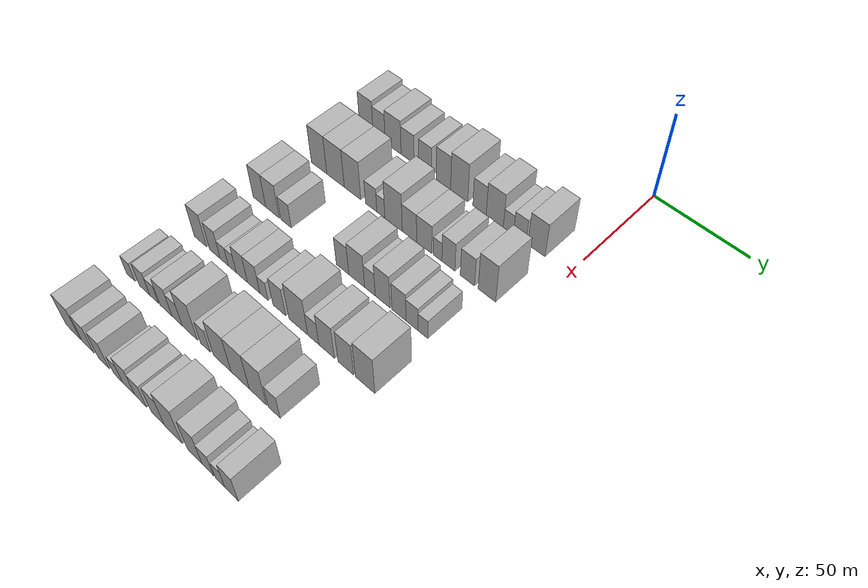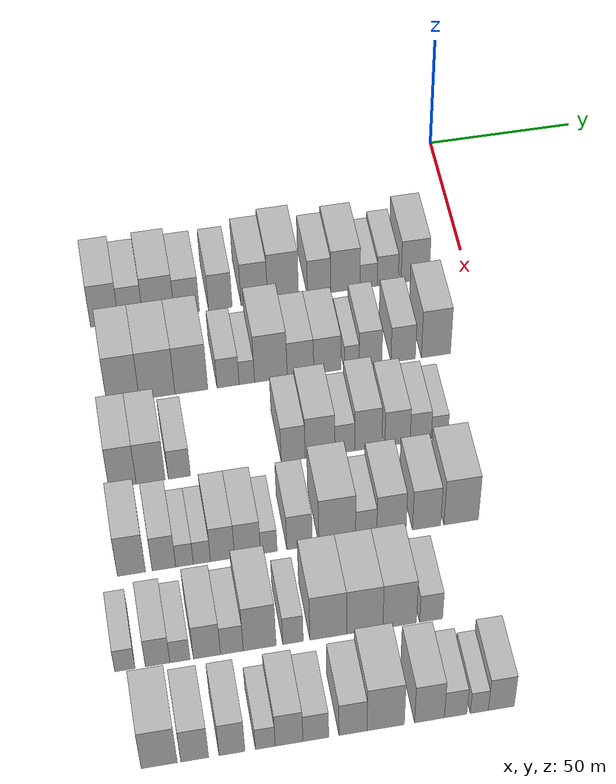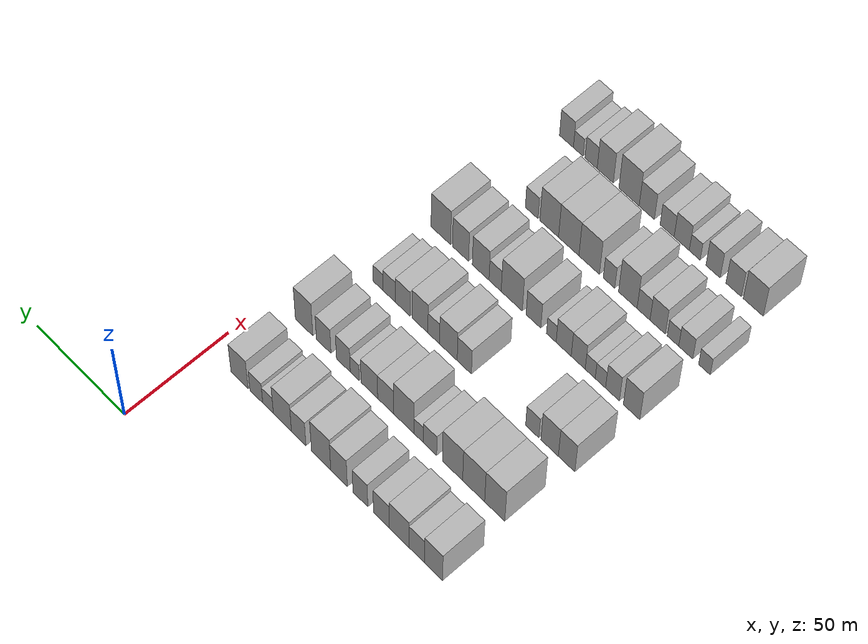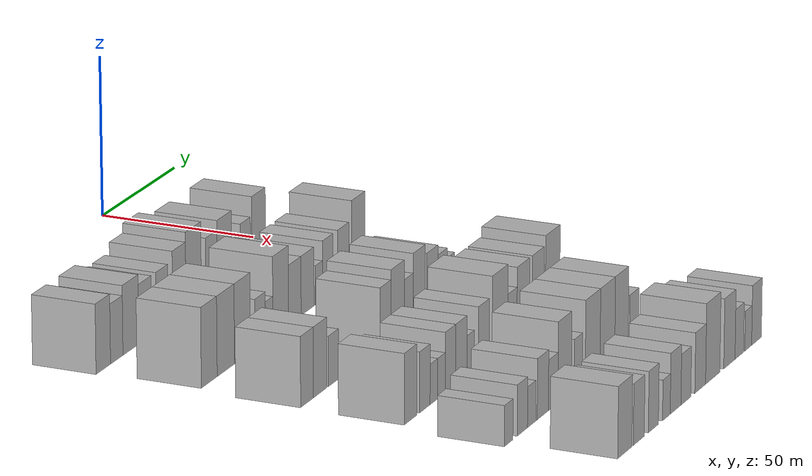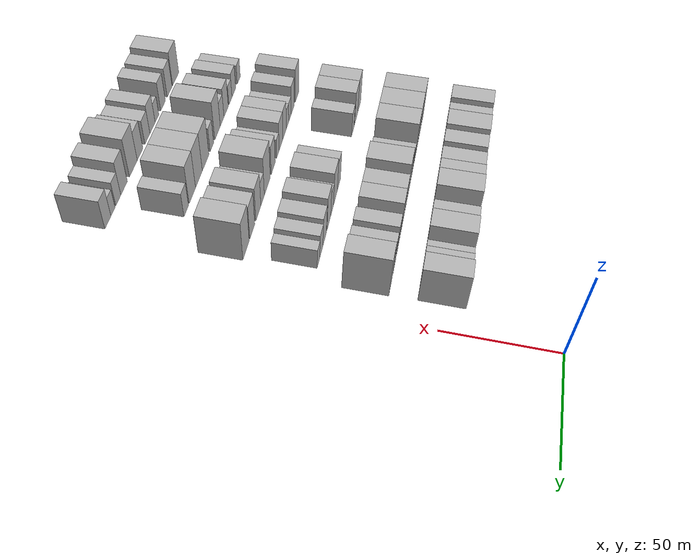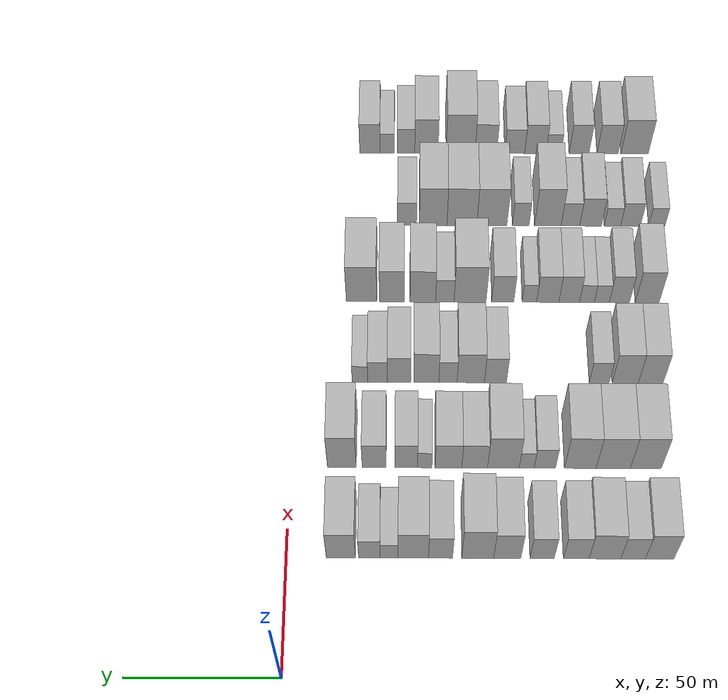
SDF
<sdf version="1.6">
 <world name="default">
  <model name="building_48">
   <static>1</static>
   <pose>50.0000 -121.8584 0 0.000000 0.000000 0.000000</pose>
   <link name="link">
    <pose>0 0 10.50 0 0 0</pose>
    <collision name="collision"><geometry><box><size>20.0000 9.3083 21.0000</size></box></geometry></collision>
    <visual name="visual">
     <cast_shadows>0</cast_shadows>
     <geometry><box><size>20.0000 9.3083 21.0000</size></box></geometry>
     <material>
      <script>
       <uri>model://HANNAS_wall/materials/scripts</uri>
       <uri>model://HANNAS_wall/materials/textures</uri>
       <name>vrc/HANNAS_wall</name>
      </script>
     </material>
    </visual>
   </link>
  </model>
  <model name="building_49">
   <static>1</static>
   <pose>50.0000 -113.1992 0 0.000000 0.000000 0.000000</pose>
   <link name="link">
    <pose>0 0 9.00 0 0 0</pose>
    <collision name="collision"><geometry><box><size>20.0000 8.0102 18.0000</size></box></geometry></collision>
    <visual name="visual">
     <cast_shadows>0</cast_shadows>
     <geometry><box><size>20.0000 8.0102 18.0000</size></box></geometry>
     <material>
      <script>
       <uri>model://HANNAS_wall/materials/scripts</uri>
       <uri>model://HANNAS_wall/materials/textures</uri>
       <name>vrc/HANNAS_wall</name>
      </script>
     </material>
    </visual>
   </link>
  </model>
  <model name="building_50">
   <static>1</static>
   <pose>50.0000 -104.0061 0 0.000000 0.000000 0.000000</pose>
   <link name="link">
    <pose>0 0 10.50 0 0 0</pose>
    <collision name="collision"><geometry><box><size>20.0000 10.3760 21.0000</size></box></geometry></collision>
    <visual name="visual">
     <cast_shadows>0</cast_shadows>
     <geometry><box><size>20.0000 10.3760 21.0000</size></box></geometry>
     <material>
      <script>
       <uri>model://HANNAS_wall/materials/scripts</uri>
       <uri>model://HANNAS_wall/materials/textures</uri>
       <name>vrc/HANNAS_wall</name>
      </script>
     </material>
    </visual>
   </link>
  </model>
  <model name="building_51">
   <static>1</static>
   <pose>50.0000 -94.6270 0 0.000000 0.000000 0.000000</pose>
   <link name="link">
    <pose>0 0 9.00 0 0 0</pose>
    <collision name="collision"><geometry><box><size>20.0000 8.3822 18.0000</size></box></geometry></collision>
    <visual name="visual">
     <cast_shadows>0</cast_shadows>
     <geometry><box><size>20.0000 8.3822 18.0000</size></box></geometry>
     <material>
      <script>
       <uri>model://HANNAS_wall/materials/scripts</uri>
       <uri>model://HANNAS_wall/materials/textures</uri>
       <name>vrc/HANNAS_wall</name>
      </script>
     </material>
    </visual>
   </link>
  </model>
  <model name="building_52">
   <static>1</static>
   <pose>50.0000 -83.4829 0 0.000000 0.000000 0.000000</pose>
   <link name="link">
    <pose>0 0 9.00 0 0 0</pose>
    <collision name="collision"><geometry><box><size>20.0000 7.9060 18.0000</size></box></geometry></collision>
    <visual name="visual">
     <cast_shadows>0</cast_shadows>
     <geometry><box><size>20.0000 7.9060 18.0000</size></box></geometry>
     <material>
      <script>
       <uri>model://HANNAS_wall/materials/scripts</uri>
       <uri>model://HANNAS_wall/materials/textures</uri>
       <name>vrc/HANNAS_wall</name>
      </script>
     </material>
    </visual>
   </link>
  </model>
  <model name="building_53">
   <static>1</static>
   <pose>50.0000 -72.0863 0 0.000000 0.000000 0.000000</pose>
   <link name="link">
    <pose>0 0 10.50 0 0 0</pose>
    <collision name="collision"><geometry><box><size>20.0000 8.8870 21.0000</size></box></geometry></collision>
    <visual name="visual">
     <cast_shadows>0</cast_shadows>
     <geometry><box><size>20.0000 8.8870 21.0000</size></box></geometry>
     <material>
      <script>
       <uri>model://HANNAS_wall/materials/scripts</uri>
       <uri>model://HANNAS_wall/materials/textures</uri>
       <name>vrc/HANNAS_wall</name>
      </script>
     </material>
    </visual>
   </link>
  </model>
  <model name="building_54">
   <static>1</static>
   <pose>50.0000 -62.4509 0 0.000000 0.000000 0.000000</pose>
   <link name="link">
    <pose>0 0 12.00 0 0 0</pose>
    <collision name="collision"><geometry><box><size>20.0000 10.3838 24.0000</size></box></geometry></collision>
    <visual name="visual">
     <cast_shadows>0</cast_shadows>
     <geometry><box><size>20.0000 10.3838 24.0000</size></box></geometry>
     <material>
      <script>
       <uri>model://HANNAS_wall/materials/scripts</uri>
       <uri>model://HANNAS_wall/materials/textures</uri>
       <name>vrc/HANNAS_wall</name>
      </script>
     </material>
    </visual>
   </link>
  </model>
  <model name="building_55">
   <static>1</static>
   <pose>50.0000 -50.3179 0 0.000000 0.000000 0.000000</pose>
   <link name="link">
    <pose>0 0 9.00 0 0 0</pose>
    <collision name="collision"><geometry><box><size>20.0000 7.8824 18.0000</size></box></geometry></collision>
    <visual name="visual">
     <cast_shadows>0</cast_shadows>
     <geometry><box><size>20.0000 7.8824 18.0000</size></box></geometry>
     <material>
      <script>
       <uri>model://HANNAS_wall/materials/scripts</uri>
       <uri>model://HANNAS_wall/materials/textures</uri>
       <name>vrc/HANNAS_wall</name>
      </script>
     </material>
    </visual>
   </link>
  </model>
  <model name="building_56">
   <static>1</static>
   <pose>50.0000 -41.4188 0 0.000000 0.000000 0.000000</pose>
   <link name="link">
    <pose>0 0 10.50 0 0 0</pose>
    <collision name="collision"><geometry><box><size>20.0000 9.9157 21.0000</size></box></geometry></collision>
    <visual name="visual">
     <cast_shadows>0</cast_shadows>
     <geometry><box><size>20.0000 9.9157 21.0000</size></box></geometry>
     <material>
      <script>
       <uri>model://HANNAS_wall/materials/scripts</uri>
       <uri>model://HANNAS_wall/materials/textures</uri>
       <name>vrc/HANNAS_wall</name>
      </script>
     </material>
    </visual>
   </link>
  </model>
  <model name="building_57">
   <static>1</static>
   <pose>50.0000 -33.5466 0 0.000000 0.000000 0.000000</pose>
   <link name="link">
    <pose>0 0 6.00 0 0 0</pose>
    <collision name="collision"><geometry><box><size>20.0000 5.8287 12.0000</size></box></geometry></collision>
    <visual name="visual">
     <cast_shadows>0</cast_shadows>
     <geometry><box><size>20.0000 5.8287 12.0000</size></box></geometry>
     <material>
      <script>
       <uri>model://HANNAS_wall/materials/scripts</uri>
       <uri>model://HANNAS_wall/materials/textures</uri>
       <name>vrc/HANNAS_wall</name>
      </script>
     </material>
    </visual>
   </link>
  </model>
  <model name="building_58">
   <static>1</static>
   <pose>50.0000 -27.0967 0 0.000000 0.000000 0.000000</pose>
   <link name="link">
    <pose>0 0 7.50 0 0 0</pose>
    <collision name="collision"><geometry><box><size>20.0000 7.0712 15.0000</size></box></geometry></collision>
    <visual name="visual">
     <cast_shadows>0</cast_shadows>
     <geometry><box><size>20.0000 7.0712 15.0000</size></box></geometry>
     <material>
      <script>
       <uri>model://HANNAS_wall/materials/scripts</uri>
       <uri>model://HANNAS_wall/materials/textures</uri>
       <name>vrc/HANNAS_wall</name>
      </script>
     </material>
    </visual>
   </link>
  </model>
  <model name="building_59">
   <static>1</static>
   <pose>50.0000 -17.7884 0 0.000000 0.000000 0.000000</pose>
   <link name="link">
    <pose>0 0 10.50 0 0 0</pose>
    <collision name="collision"><geometry><box><size>20.0000 9.5454 21.0000</size></box></geometry></collision>
    <visual name="visual">
     <cast_shadows>0</cast_shadows>
     <geometry><box><size>20.0000 9.5454 21.0000</size></box></geometry>
     <material>
      <script>
       <uri>model://HANNAS_wall/materials/scripts</uri>
       <uri>model://HANNAS_wall/materials/textures</uri>
       <name>vrc/HANNAS_wall</name>
      </script>
     </material>
    </visual>
   </link>
  </model>
  <model name="building_167">
   <static>1</static>
   <pose>82.0000 -119.5898 0 0.000000 0.000000 0.000000</pose>
   <link name="link">
    <pose>0 0 12.00 0 0 0</pose>
    <collision name="collision"><geometry><box><size>20.0000 10.4270 24.0000</size></box></geometry></collision>
    <visual name="visual">
     <cast_shadows>0</cast_shadows>
     <geometry><box><size>20.0000 10.4270 24.0000</size></box></geometry>
     <material>
      <script>
       <uri>model://HANNAS_wall/materials/scripts</uri>
       <uri>model://HANNAS_wall/materials/textures</uri>
       <name>vrc/HANNAS_wall</name>
      </script>
     </material>
    </visual>
   </link>
  </model>
  <model name="building_168">
   <static>1</static>
   <pose>82.0000 -108.6301 0 0.000000 0.000000 0.000000</pose>
   <link name="link">
    <pose>0 0 12.00 0 0 0</pose>
    <collision name="collision"><geometry><box><size>20.0000 11.4925 24.0000</size></box></geometry></collision>
    <visual name="visual">
     <cast_shadows>0</cast_shadows>
     <geometry><box><size>20.0000 11.4925 24.0000</size></box></geometry>
     <material>
      <script>
       <uri>model://HANNAS_wall/materials/scripts</uri>
       <uri>model://HANNAS_wall/materials/textures</uri>
       <name>vrc/HANNAS_wall</name>
      </script>
     </material>
    </visual>
   </link>
  </model>
  <model name="building_169">
   <static>1</static>
   <pose>82.0000 -97.5637 0 0.000000 0.000000 0.000000</pose>
   <link name="link">
    <pose>0 0 12.00 0 0 0</pose>
    <collision name="collision"><geometry><box><size>20.0000 10.6405 24.0000</size></box></geometry></collision>
    <visual name="visual">
     <cast_shadows>0</cast_shadows>
     <geometry><box><size>20.0000 10.6405 24.0000</size></box></geometry>
     <material>
      <script>
       <uri>model://HANNAS_wall/materials/scripts</uri>
       <uri>model://HANNAS_wall/materials/textures</uri>
       <name>vrc/HANNAS_wall</name>
      </script>
     </material>
    </visual>
   </link>
  </model>
  <model name="building_170">
   <static>1</static>
   <pose>82.0000 -85.6618 0 0.000000 0.000000 0.000000</pose>
   <link name="link">
    <pose>0 0 7.50 0 0 0</pose>
    <collision name="collision"><geometry><box><size>20.0000 7.1633 15.0000</size></box></geometry></collision>
    <visual name="visual">
     <cast_shadows>0</cast_shadows>
     <geometry><box><size>20.0000 7.1633 15.0000</size></box></geometry>
     <material>
      <script>
       <uri>model://HANNAS_wall/materials/scripts</uri>
       <uri>model://HANNAS_wall/materials/textures</uri>
       <name>vrc/HANNAS_wall</name>
      </script>
     </material>
    </visual>
   </link>
  </model>
  <model name="building_171">
   <static>1</static>
   <pose>82.0000 -79.5696 0 0.000000 0.000000 0.000000</pose>
   <link name="link">
    <pose>0 0 6.00 0 0 0</pose>
    <collision name="collision"><geometry><box><size>20.0000 5.0210 12.0000</size></box></geometry></collision>
    <visual name="visual">
     <cast_shadows>0</cast_shadows>
     <geometry><box><size>20.0000 5.0210 12.0000</size></box></geometry>
     <material>
      <script>
       <uri>model://HANNAS_wall/materials/scripts</uri>
       <uri>model://HANNAS_wall/materials/textures</uri>
       <name>vrc/HANNAS_wall</name>
      </script>
     </material>
    </visual>
   </link>
  </model>
  <model name="building_172">
   <static>1</static>
   <pose>82.0000 -71.7171 0 0.000000 0.000000 0.000000</pose>
   <link name="link">
    <pose>0 0 12.00 0 0 0</pose>
    <collision name="collision"><geometry><box><size>20.0000 10.6840 24.0000</size></box></geometry></collision>
    <visual name="visual">
     <cast_shadows>0</cast_shadows>
     <geometry><box><size>20.0000 10.6840 24.0000</size></box></geometry>
     <material>
      <script>
       <uri>model://HANNAS_wall/materials/scripts</uri>
       <uri>model://HANNAS_wall/materials/textures</uri>
       <name>vrc/HANNAS_wall</name>
      </script>
     </material>
    </visual>
   </link>
  </model>
  <model name="building_173">
   <static>1</static>
   <pose>82.0000 -62.0393 0 0.000000 0.000000 0.000000</pose>
   <link name="link">
    <pose>0 0 9.00 0 0 0</pose>
    <collision name="collision"><geometry><box><size>20.0000 8.6715 18.0000</size></box></geometry></collision>
    <visual name="visual">
     <cast_shadows>0</cast_shadows>
     <geometry><box><size>20.0000 8.6715 18.0000</size></box></geometry>
     <material>
      <script>
       <uri>model://HANNAS_wall/materials/scripts</uri>
       <uri>model://HANNAS_wall/materials/textures</uri>
       <name>vrc/HANNAS_wall</name>
      </script>
     </material>
    </visual>
   </link>
  </model>
  <model name="building_174">
   <static>1</static>
   <pose>82.0000 -53.2101 0 0.000000 0.000000 0.000000</pose>
   <link name="link">
    <pose>0 0 9.00 0 0 0</pose>
    <collision name="collision"><geometry><box><size>20.0000 8.9869 18.0000</size></box></geometry></collision>
    <visual name="visual">
     <cast_shadows>0</cast_shadows>
     <geometry><box><size>20.0000 8.9869 18.0000</size></box></geometry>
     <material>
      <script>
       <uri>model://HANNAS_wall/materials/scripts</uri>
       <uri>model://HANNAS_wall/materials/textures</uri>
       <name>vrc/HANNAS_wall</name>
      </script>
     </material>
    </visual>
   </link>
  </model>
  <model name="building_175">
   <static>1</static>
   <pose>82.0000 -45.2707 0 0.000000 0.000000 0.000000</pose>
   <link name="link">
    <pose>0 0 6.00 0 0 0</pose>
    <collision name="collision"><geometry><box><size>20.0000 4.8919 12.0000</size></box></geometry></collision>
    <visual name="visual">
     <cast_shadows>0</cast_shadows>
     <geometry><box><size>20.0000 4.8919 12.0000</size></box></geometry>
     <material>
      <script>
       <uri>model://HANNAS_wall/materials/scripts</uri>
       <uri>model://HANNAS_wall/materials/textures</uri>
       <name>vrc/HANNAS_wall</name>
      </script>
     </material>
    </visual>
   </link>
  </model>
  <model name="building_176">
   <static>1</static>
   <pose>82.0000 -39.0556 0 0.000000 0.000000 0.000000</pose>
   <link name="link">
    <pose>0 0 9.00 0 0 0</pose>
    <collision name="collision"><geometry><box><size>20.0000 7.5381 18.0000</size></box></geometry></collision>
    <visual name="visual">
     <cast_shadows>0</cast_shadows>
     <geometry><box><size>20.0000 7.5381 18.0000</size></box></geometry>
     <material>
      <script>
       <uri>model://HANNAS_wall/materials/scripts</uri>
       <uri>model://HANNAS_wall/materials/textures</uri>
       <name>vrc/HANNAS_wall</name>
      </script>
     </material>
    </visual>
   </link>
  </model>
  <model name="building_177">
   <static>1</static>
   <pose>82.0000 -28.2707 0 0.000000 0.000000 0.000000</pose>
   <link name="link">
    <pose>0 0 9.00 0 0 0</pose>
    <collision name="collision"><geometry><box><size>20.0000 8.0317 18.0000</size></box></geometry></collision>
    <visual name="visual">
     <cast_shadows>0</cast_shadows>
     <geometry><box><size>20.0000 8.0317 18.0000</size></box></geometry>
     <material>
      <script>
       <uri>model://HANNAS_wall/materials/scripts</uri>
       <uri>model://HANNAS_wall/materials/textures</uri>
       <name>vrc/HANNAS_wall</name>
      </script>
     </material>
    </visual>
   </link>
  </model>
  <model name="building_178">
   <static>1</static>
   <pose>82.0000 -17.4263 0 0.000000 0.000000 0.000000</pose>
   <link name="link">
    <pose>0 0 12.00 0 0 0</pose>
    <collision name="collision"><geometry><box><size>20.0000 9.6572 24.0000</size></box></geometry></collision>
    <visual name="visual">
     <cast_shadows>0</cast_shadows>
     <geometry><box><size>20.0000 9.6572 24.0000</size></box></geometry>
     <material>
      <script>
       <uri>model://HANNAS_wall/materials/scripts</uri>
       <uri>model://HANNAS_wall/materials/textures</uri>
       <name>vrc/HANNAS_wall</name>
      </script>
     </material>
    </visual>
   </link>
  </model>
  <model name="building_292">
   <static>1</static>
   <pose>114.0000 -123.5544 0 0.000000 0.000000 0.000000</pose>
   <link name="link">
    <pose>0 0 10.50 0 0 0</pose>
    <collision name="collision"><geometry><box><size>20.0000 8.5329 21.0000</size></box></geometry></collision>
    <visual name="visual">
     <cast_shadows>0</cast_shadows>
     <geometry><box><size>20.0000 8.5329 21.0000</size></box></geometry>
     <material>
      <script>
       <uri>model://HANNAS_wall/materials/scripts</uri>
       <uri>model://HANNAS_wall/materials/textures</uri>
       <name>vrc/HANNAS_wall</name>
      </script>
     </material>
    </visual>
   </link>
  </model>
  <model name="building_293">
   <static>1</static>
   <pose>114.0000 -114.7500 0 0.000000 0.000000 0.000000</pose>
   <link name="link">
    <pose>0 0 10.50 0 0 0</pose>
    <collision name="collision"><geometry><box><size>20.0000 9.0758 21.0000</size></box></geometry></collision>
    <visual name="visual">
     <cast_shadows>0</cast_shadows>
     <geometry><box><size>20.0000 9.0758 21.0000</size></box></geometry>
     <material>
      <script>
       <uri>model://HANNAS_wall/materials/scripts</uri>
       <uri>model://HANNAS_wall/materials/textures</uri>
       <name>vrc/HANNAS_wall</name>
      </script>
     </material>
    </visual>
   </link>
  </model>
  <model name="building_294">
   <static>1</static>
   <pose>114.0000 -105.7422 0 0.000000 0.000000 0.000000</pose>
   <link name="link">
    <pose>0 0 7.50 0 0 0</pose>
    <collision name="collision"><geometry><box><size>20.0000 6.9399 15.0000</size></box></geometry></collision>
    <visual name="visual">
     <cast_shadows>0</cast_shadows>
     <geometry><box><size>20.0000 6.9399 15.0000</size></box></geometry>
     <material>
      <script>
       <uri>model://HANNAS_wall/materials/scripts</uri>
       <uri>model://HANNAS_wall/materials/textures</uri>
       <name>vrc/HANNAS_wall</name>
      </script>
     </material>
    </visual>
   </link>
  </model>
  <model name="building_295">
   <static>1</static>
   <pose>114.0000 -69.8280 0 0.000000 0.000000 0.000000</pose>
   <link name="link">
    <pose>0 0 9.00 0 0 0</pose>
    <collision name="collision"><geometry><box><size>20.0000 7.6295 18.0000</size></box></geometry></collision>
    <visual name="visual">
     <cast_shadows>0</cast_shadows>
     <geometry><box><size>20.0000 7.6295 18.0000</size></box></geometry>
     <material>
      <script>
       <uri>model://HANNAS_wall/materials/scripts</uri>
       <uri>model://HANNAS_wall/materials/textures</uri>
       <name>vrc/HANNAS_wall</name>
      </script>
     </material>
    </visual>
   </link>
  </model>
  <model name="building_296">
   <static>1</static>
   <pose>114.0000 -61.2697 0 0.000000 0.000000 0.000000</pose>
   <link name="link">
    <pose>0 0 10.50 0 0 0</pose>
    <collision name="collision"><geometry><box><size>20.0000 9.4871 21.0000</size></box></geometry></collision>
    <visual name="visual">
     <cast_shadows>0</cast_shadows>
     <geometry><box><size>20.0000 9.4871 21.0000</size></box></geometry>
     <material>
      <script>
       <uri>model://HANNAS_wall/materials/scripts</uri>
       <uri>model://HANNAS_wall/materials/textures</uri>
       <name>vrc/HANNAS_wall</name>
      </script>
     </material>
    </visual>
   </link>
  </model>
  <model name="building_297">
   <static>1</static>
   <pose>114.0000 -53.3738 0 0.000000 0.000000 0.000000</pose>
   <link name="link">
    <pose>0 0 7.50 0 0 0</pose>
    <collision name="collision"><geometry><box><size>20.0000 6.3047 15.0000</size></box></geometry></collision>
    <visual name="visual">
     <cast_shadows>0</cast_shadows>
     <geometry><box><size>20.0000 6.3047 15.0000</size></box></geometry>
     <material>
      <script>
       <uri>model://HANNAS_wall/materials/scripts</uri>
       <uri>model://HANNAS_wall/materials/textures</uri>
       <name>vrc/HANNAS_wall</name>
      </script>
     </material>
    </visual>
   </link>
  </model>
  <model name="building_298">
   <static>1</static>
   <pose>114.0000 -45.9005 0 0.000000 0.000000 0.000000</pose>
   <link name="link">
    <pose>0 0 10.50 0 0 0</pose>
    <collision name="collision"><geometry><box><size>20.0000 8.6420 21.0000</size></box></geometry></collision>
    <visual name="visual">
     <cast_shadows>0</cast_shadows>
     <geometry><box><size>20.0000 8.6420 21.0000</size></box></geometry>
     <material>
      <script>
       <uri>model://HANNAS_wall/materials/scripts</uri>
       <uri>model://HANNAS_wall/materials/textures</uri>
       <name>vrc/HANNAS_wall</name>
      </script>
     </material>
    </visual>
   </link>
  </model>
  <model name="building_299">
   <static>1</static>
   <pose>114.0000 -36.5345 0 0.000000 0.000000 0.000000</pose>
   <link name="link">
    <pose>0 0 9.00 0 0 0</pose>
    <collision name="collision"><geometry><box><size>20.0000 8.0899 18.0000</size></box></geometry></collision>
    <visual name="visual">
     <cast_shadows>0</cast_shadows>
     <geometry><box><size>20.0000 8.0899 18.0000</size></box></geometry>
     <material>
      <script>
       <uri>model://HANNAS_wall/materials/scripts</uri>
       <uri>model://HANNAS_wall/materials/textures</uri>
       <name>vrc/HANNAS_wall</name>
      </script>
     </material>
    </visual>
   </link>
  </model>
  <model name="building_300">
   <static>1</static>
   <pose>114.0000 -29.0921 0 0.000000 0.000000 0.000000</pose>
   <link name="link">
    <pose>0 0 7.50 0 0 0</pose>
    <collision name="collision"><geometry><box><size>20.0000 6.7948 15.0000</size></box></geometry></collision>
    <visual name="visual">
     <cast_shadows>0</cast_shadows>
     <geometry><box><size>20.0000 6.7948 15.0000</size></box></geometry>
     <material>
      <script>
       <uri>model://HANNAS_wall/materials/scripts</uri>
       <uri>model://HANNAS_wall/materials/textures</uri>
       <name>vrc/HANNAS_wall</name>
      </script>
     </material>
    </visual>
   </link>
  </model>
  <model name="building_301">
   <static>1</static>
   <pose>114.0000 -23.0008 0 0.000000 0.000000 0.000000</pose>
   <link name="link">
    <pose>0 0 6.00 0 0 0</pose>
    <collision name="collision"><geometry><box><size>20.0000 5.3879 12.0000</size></box></geometry></collision>
    <visual name="visual">
     <cast_shadows>0</cast_shadows>
     <geometry><box><size>20.0000 5.3879 12.0000</size></box></geometry>
     <material>
      <script>
       <uri>model://HANNAS_wall/materials/scripts</uri>
       <uri>model://HANNAS_wall/materials/textures</uri>
       <name>vrc/HANNAS_wall</name>
      </script>
     </material>
    </visual>
   </link>
  </model>
  <model name="building_400">
   <static>1</static>
   <pose>146.0000 -124.6073 0 0.000000 0.000000 0.000000</pose>
   <link name="link">
    <pose>0 0 10.50 0 0 0</pose>
    <collision name="collision"><geometry><box><size>20.0000 8.5069 21.0000</size></box></geometry></collision>
    <visual name="visual">
     <cast_shadows>0</cast_shadows>
     <geometry><box><size>20.0000 8.5069 21.0000</size></box></geometry>
     <material>
      <script>
       <uri>model://HANNAS_wall/materials/scripts</uri>
       <uri>model://HANNAS_wall/materials/textures</uri>
       <name>vrc/HANNAS_wall</name>
      </script>
     </material>
    </visual>
   </link>
  </model>
  <model name="building_401">
   <static>1</static>
   <pose>146.0000 -114.7531 0 0.000000 0.000000 0.000000</pose>
   <link name="link">
    <pose>0 0 9.00 0 0 0</pose>
    <collision name="collision"><geometry><box><size>20.0000 7.2014 18.0000</size></box></geometry></collision>
    <visual name="visual">
     <cast_shadows>0</cast_shadows>
     <geometry><box><size>20.0000 7.2014 18.0000</size></box></geometry>
     <material>
      <script>
       <uri>model://HANNAS_wall/materials/scripts</uri>
       <uri>model://HANNAS_wall/materials/textures</uri>
       <name>vrc/HANNAS_wall</name>
      </script>
     </material>
    </visual>
   </link>
  </model>
  <model name="building_402">
   <static>1</static>
   <pose>146.0000 -108.4743 0 0.000000 0.000000 0.000000</pose>
   <link name="link">
    <pose>0 0 6.00 0 0 0</pose>
    <collision name="collision"><geometry><box><size>20.0000 5.3563 12.0000</size></box></geometry></collision>
    <visual name="visual">
     <cast_shadows>0</cast_shadows>
     <geometry><box><size>20.0000 5.3563 12.0000</size></box></geometry>
     <material>
      <script>
       <uri>model://HANNAS_wall/materials/scripts</uri>
       <uri>model://HANNAS_wall/materials/textures</uri>
       <name>vrc/HANNAS_wall</name>
      </script>
     </material>
    </visual>
   </link>
  </model>
  <model name="building_403">
   <static>1</static>
   <pose>146.0000 -103.1770 0 0.000000 0.000000 0.000000</pose>
   <link name="link">
    <pose>0 0 6.00 0 0 0</pose>
    <collision name="collision"><geometry><box><size>20.0000 5.2383 12.0000</size></box></geometry></collision>
    <visual name="visual">
     <cast_shadows>0</cast_shadows>
     <geometry><box><size>20.0000 5.2383 12.0000</size></box></geometry>
     <material>
      <script>
       <uri>model://HANNAS_wall/materials/scripts</uri>
       <uri>model://HANNAS_wall/materials/textures</uri>
       <name>vrc/HANNAS_wall</name>
      </script>
     </material>
    </visual>
   </link>
  </model>
  <model name="building_404">
   <static>1</static>
   <pose>146.0000 -96.8830 0 0.000000 0.000000 0.000000</pose>
   <link name="link">
    <pose>0 0 9.00 0 0 0</pose>
    <collision name="collision"><geometry><box><size>20.0000 7.3496 18.0000</size></box></geometry></collision>
    <visual name="visual">
     <cast_shadows>0</cast_shadows>
     <geometry><box><size>20.0000 7.3496 18.0000</size></box></geometry>
     <material>
      <script>
       <uri>model://HANNAS_wall/materials/scripts</uri>
       <uri>model://HANNAS_wall/materials/textures</uri>
       <name>vrc/HANNAS_wall</name>
      </script>
     </material>
    </visual>
   </link>
  </model>
  <model name="building_405">
   <static>1</static>
   <pose>146.0000 -89.2327 0 0.000000 0.000000 0.000000</pose>
   <link name="link">
    <pose>0 0 9.00 0 0 0</pose>
    <collision name="collision"><geometry><box><size>20.0000 7.9511 18.0000</size></box></geometry></collision>
    <visual name="visual">
     <cast_shadows>0</cast_shadows>
     <geometry><box><size>20.0000 7.9511 18.0000</size></box></geometry>
     <material>
      <script>
       <uri>model://HANNAS_wall/materials/scripts</uri>
       <uri>model://HANNAS_wall/materials/textures</uri>
       <name>vrc/HANNAS_wall</name>
      </script>
     </material>
    </visual>
   </link>
  </model>
  <model name="building_406">
   <static>1</static>
   <pose>146.0000 -82.7058 0 0.000000 0.000000 0.000000</pose>
   <link name="link">
    <pose>0 0 6.00 0 0 0</pose>
    <collision name="collision"><geometry><box><size>20.0000 5.1027 12.0000</size></box></geometry></collision>
    <visual name="visual">
     <cast_shadows>0</cast_shadows>
     <geometry><box><size>20.0000 5.1027 12.0000</size></box></geometry>
     <material>
      <script>
       <uri>model://HANNAS_wall/materials/scripts</uri>
       <uri>model://HANNAS_wall/materials/textures</uri>
       <name>vrc/HANNAS_wall</name>
      </script>
     </material>
    </visual>
   </link>
  </model>
  <model name="building_407">
   <static>1</static>
   <pose>146.0000 -73.2234 0 0.000000 0.000000 0.000000</pose>
   <link name="link">
    <pose>0 0 9.00 0 0 0</pose>
    <collision name="collision"><geometry><box><size>20.0000 7.8622 18.0000</size></box></geometry></collision>
    <visual name="visual">
     <cast_shadows>0</cast_shadows>
     <geometry><box><size>20.0000 7.8622 18.0000</size></box></geometry>
     <material>
      <script>
       <uri>model://HANNAS_wall/materials/scripts</uri>
       <uri>model://HANNAS_wall/materials/textures</uri>
       <name>vrc/HANNAS_wall</name>
      </script>
     </material>
    </visual>
   </link>
  </model>
  <model name="building_408">
   <static>1</static>
   <pose>146.0000 -61.6060 0 0.000000 0.000000 0.000000</pose>
   <link name="link">
    <pose>0 0 12.00 0 0 0</pose>
    <collision name="collision"><geometry><box><size>20.0000 11.3726 24.0000</size></box></geometry></collision>
    <visual name="visual">
     <cast_shadows>0</cast_shadows>
     <geometry><box><size>20.0000 11.3726 24.0000</size></box></geometry>
     <material>
      <script>
       <uri>model://HANNAS_wall/materials/scripts</uri>
       <uri>model://HANNAS_wall/materials/textures</uri>
       <name>vrc/HANNAS_wall</name>
      </script>
     </material>
    </visual>
   </link>
  </model>
  <model name="building_409">
   <static>1</static>
   <pose>146.0000 -52.6364 0 0.000000 0.000000 0.000000</pose>
   <link name="link">
    <pose>0 0 7.50 0 0 0</pose>
    <collision name="collision"><geometry><box><size>20.0000 6.5664 15.0000</size></box></geometry></collision>
    <visual name="visual">
     <cast_shadows>0</cast_shadows>
     <geometry><box><size>20.0000 6.5664 15.0000</size></box></geometry>
     <material>
      <script>
       <uri>model://HANNAS_wall/materials/scripts</uri>
       <uri>model://HANNAS_wall/materials/textures</uri>
       <name>vrc/HANNAS_wall</name>
      </script>
     </material>
    </visual>
   </link>
  </model>
  <model name="building_410">
   <static>1</static>
   <pose>146.0000 -44.8072 0 0.000000 0.000000 0.000000</pose>
   <link name="link">
    <pose>0 0 10.50 0 0 0</pose>
    <collision name="collision"><geometry><box><size>20.0000 9.0919 21.0000</size></box></geometry></collision>
    <visual name="visual">
     <cast_shadows>0</cast_shadows>
     <geometry><box><size>20.0000 9.0919 21.0000</size></box></geometry>
     <material>
      <script>
       <uri>model://HANNAS_wall/materials/scripts</uri>
       <uri>model://HANNAS_wall/materials/textures</uri>
       <name>vrc/HANNAS_wall</name>
      </script>
     </material>
    </visual>
   </link>
  </model>
  <model name="building_411">
   <static>1</static>
   <pose>146.0000 -33.8492 0 0.000000 0.000000 0.000000</pose>
   <link name="link">
    <pose>0 0 10.50 0 0 0</pose>
    <collision name="collision"><geometry><box><size>20.0000 8.8242 21.0000</size></box></geometry></collision>
    <visual name="visual">
     <cast_shadows>0</cast_shadows>
     <geometry><box><size>20.0000 8.8242 21.0000</size></box></geometry>
     <material>
      <script>
       <uri>model://HANNAS_wall/materials/scripts</uri>
       <uri>model://HANNAS_wall/materials/textures</uri>
       <name>vrc/HANNAS_wall</name>
      </script>
     </material>
    </visual>
   </link>
  </model>
  <model name="building_412">
   <static>1</static>
   <pose>146.0000 -23.0358 0 0.000000 0.000000 0.000000</pose>
   <link name="link">
    <pose>0 0 12.00 0 0 0</pose>
    <collision name="collision"><geometry><box><size>20.0000 10.8026 24.0000</size></box></geometry></collision>
    <visual name="visual">
     <cast_shadows>0</cast_shadows>
     <geometry><box><size>20.0000 10.8026 24.0000</size></box></geometry>
     <material>
      <script>
       <uri>model://HANNAS_wall/materials/scripts</uri>
       <uri>model://HANNAS_wall/materials/textures</uri>
       <name>vrc/HANNAS_wall</name>
      </script>
     </material>
    </visual>
   </link>
  </model>
  <model name="building_519">
   <static>1</static>
   <pose>178.0000 -130.3808 0 0.000000 0.000000 0.000000</pose>
   <link name="link">
    <pose>0 0 6.00 0 0 0</pose>
    <collision name="collision"><geometry><box><size>20.0000 5.9741 12.0000</size></box></geometry></collision>
    <visual name="visual">
     <cast_shadows>0</cast_shadows>
     <geometry><box><size>20.0000 5.9741 12.0000</size></box></geometry>
     <material>
      <script>
       <uri>model://HANNAS_wall/materials/scripts</uri>
       <uri>model://HANNAS_wall/materials/textures</uri>
       <name>vrc/HANNAS_wall</name>
      </script>
     </material>
    </visual>
   </link>
  </model>
  <model name="building_520">
   <static>1</static>
   <pose>178.0000 -120.7756 0 0.000000 0.000000 0.000000</pose>
   <link name="link">
    <pose>0 0 7.50 0 0 0</pose>
    <collision name="collision"><geometry><box><size>20.0000 7.2362 15.0000</size></box></geometry></collision>
    <visual name="visual">
     <cast_shadows>0</cast_shadows>
     <geometry><box><size>20.0000 7.2362 15.0000</size></box></geometry>
     <material>
      <script>
       <uri>model://HANNAS_wall/materials/scripts</uri>
       <uri>model://HANNAS_wall/materials/textures</uri>
       <name>vrc/HANNAS_wall</name>
      </script>
     </material>
    </visual>
   </link>
  </model>
  <model name="building_521">
   <static>1</static>
   <pose>178.0000 -114.1915 0 0.000000 0.000000 0.000000</pose>
   <link name="link">
    <pose>0 0 6.00 0 0 0</pose>
    <collision name="collision"><geometry><box><size>20.0000 5.9320 12.0000</size></box></geometry></collision>
    <visual name="visual">
     <cast_shadows>0</cast_shadows>
     <geometry><box><size>20.0000 5.9320 12.0000</size></box></geometry>
     <material>
      <script>
       <uri>model://HANNAS_wall/materials/scripts</uri>
       <uri>model://HANNAS_wall/materials/textures</uri>
       <name>vrc/HANNAS_wall</name>
      </script>
     </material>
    </visual>
   </link>
  </model>
  <model name="building_522">
   <static>1</static>
   <pose>178.0000 -106.2288 0 0.000000 0.000000 0.000000</pose>
   <link name="link">
    <pose>0 0 9.00 0 0 0</pose>
    <collision name="collision"><geometry><box><size>20.0000 7.9935 18.0000</size></box></geometry></collision>
    <visual name="visual">
     <cast_shadows>0</cast_shadows>
     <geometry><box><size>20.0000 7.9935 18.0000</size></box></geometry>
     <material>
      <script>
       <uri>model://HANNAS_wall/materials/scripts</uri>
       <uri>model://HANNAS_wall/materials/textures</uri>
       <name>vrc/HANNAS_wall</name>
      </script>
     </material>
    </visual>
   </link>
  </model>
  <model name="building_523">
   <static>1</static>
   <pose>178.0000 -98.8390 0 0.000000 0.000000 0.000000</pose>
   <link name="link">
    <pose>0 0 7.50 0 0 0</pose>
    <collision name="collision"><geometry><box><size>20.0000 6.7861 15.0000</size></box></geometry></collision>
    <visual name="visual">
     <cast_shadows>0</cast_shadows>
     <geometry><box><size>20.0000 6.7861 15.0000</size></box></geometry>
     <material>
      <script>
       <uri>model://HANNAS_wall/materials/scripts</uri>
       <uri>model://HANNAS_wall/materials/textures</uri>
       <name>vrc/HANNAS_wall</name>
      </script>
     </material>
    </visual>
   </link>
  </model>
  <model name="building_524">
   <static>1</static>
   <pose>178.0000 -90.5756 0 0.000000 0.000000 0.000000</pose>
   <link name="link">
    <pose>0 0 12.00 0 0 0</pose>
    <collision name="collision"><geometry><box><size>20.0000 9.7408 24.0000</size></box></geometry></collision>
    <visual name="visual">
     <cast_shadows>0</cast_shadows>
     <geometry><box><size>20.0000 9.7408 24.0000</size></box></geometry>
     <material>
      <script>
       <uri>model://HANNAS_wall/materials/scripts</uri>
       <uri>model://HANNAS_wall/materials/textures</uri>
       <name>vrc/HANNAS_wall</name>
      </script>
     </material>
    </visual>
   </link>
  </model>
  <model name="building_525">
   <static>1</static>
   <pose>178.0000 -80.6505 0 0.000000 0.000000 0.000000</pose>
   <link name="link">
    <pose>0 0 7.50 0 0 0</pose>
    <collision name="collision"><geometry><box><size>20.0000 6.1093 15.0000</size></box></geometry></collision>
    <visual name="visual">
     <cast_shadows>0</cast_shadows>
     <geometry><box><size>20.0000 6.1093 15.0000</size></box></geometry>
     <material>
      <script>
       <uri>model://HANNAS_wall/materials/scripts</uri>
       <uri>model://HANNAS_wall/materials/textures</uri>
       <name>vrc/HANNAS_wall</name>
      </script>
     </material>
    </visual>
   </link>
  </model>
  <model name="building_526">
   <static>1</static>
   <pose>178.0000 -70.1181 0 0.000000 0.000000 0.000000</pose>
   <link name="link">
    <pose>0 0 12.00 0 0 0</pose>
    <collision name="collision"><geometry><box><size>20.0000 10.9555 24.0000</size></box></geometry></collision>
    <visual name="visual">
     <cast_shadows>0</cast_shadows>
     <geometry><box><size>20.0000 10.9555 24.0000</size></box></geometry>
     <material>
      <script>
       <uri>model://HANNAS_wall/materials/scripts</uri>
       <uri>model://HANNAS_wall/materials/textures</uri>
       <name>vrc/HANNAS_wall</name>
      </script>
     </material>
    </visual>
   </link>
  </model>
  <model name="building_527">
   <static>1</static>
   <pose>178.0000 -59.1689 0 0.000000 0.000000 0.000000</pose>
   <link name="link">
    <pose>0 0 12.00 0 0 0</pose>
    <collision name="collision"><geometry><box><size>20.0000 10.9428 24.0000</size></box></geometry></collision>
    <visual name="visual">
     <cast_shadows>0</cast_shadows>
     <geometry><box><size>20.0000 10.9428 24.0000</size></box></geometry>
     <material>
      <script>
       <uri>model://HANNAS_wall/materials/scripts</uri>
       <uri>model://HANNAS_wall/materials/textures</uri>
       <name>vrc/HANNAS_wall</name>
      </script>
     </material>
    </visual>
   </link>
  </model>
  <model name="building_528">
   <static>1</static>
   <pose>178.0000 -48.6554 0 0.000000 0.000000 0.000000</pose>
   <link name="link">
    <pose>0 0 12.00 0 0 0</pose>
    <collision name="collision"><geometry><box><size>20.0000 10.0843 24.0000</size></box></geometry></collision>
    <visual name="visual">
     <cast_shadows>0</cast_shadows>
     <geometry><box><size>20.0000 10.0843 24.0000</size></box></geometry>
     <material>
      <script>
       <uri>model://HANNAS_wall/materials/scripts</uri>
       <uri>model://HANNAS_wall/materials/textures</uri>
       <name>vrc/HANNAS_wall</name>
      </script>
     </material>
    </visual>
   </link>
  </model>
  <model name="building_529">
   <static>1</static>
   <pose>178.0000 -39.1480 0 0.000000 0.000000 0.000000</pose>
   <link name="link">
    <pose>0 0 7.50 0 0 0</pose>
    <collision name="collision"><geometry><box><size>20.0000 6.9305 15.0000</size></box></geometry></collision>
    <visual name="visual">
     <cast_shadows>0</cast_shadows>
     <geometry><box><size>20.0000 6.9305 15.0000</size></box></geometry>
     <material>
      <script>
       <uri>model://HANNAS_wall/materials/scripts</uri>
       <uri>model://HANNAS_wall/materials/textures</uri>
       <name>vrc/HANNAS_wall</name>
      </script>
     </material>
    </visual>
   </link>
  </model>
  <model name="building_633">
   <static>1</static>
   <pose>210.0000 -124.4406 0 0.000000 0.000000 0.000000</pose>
   <link name="link">
    <pose>0 0 10.50 0 0 0</pose>
    <collision name="collision"><geometry><box><size>20.0000 10.2727 21.0000</size></box></geometry></collision>
    <visual name="visual">
     <cast_shadows>0</cast_shadows>
     <geometry><box><size>20.0000 10.2727 21.0000</size></box></geometry>
     <material>
      <script>
       <uri>model://HANNAS_wall/materials/scripts</uri>
       <uri>model://HANNAS_wall/materials/textures</uri>
       <name>vrc/HANNAS_wall</name>
      </script>
     </material>
    </visual>
   </link>
  </model>
  <model name="building_634">
   <static>1</static>
   <pose>210.0000 -114.3168 0 0.000000 0.000000 0.000000</pose>
   <link name="link">
    <pose>0 0 9.00 0 0 0</pose>
    <collision name="collision"><geometry><box><size>20.0000 7.9749 18.0000</size></box></geometry></collision>
    <visual name="visual">
     <cast_shadows>0</cast_shadows>
     <geometry><box><size>20.0000 7.9749 18.0000</size></box></geometry>
     <material>
      <script>
       <uri>model://HANNAS_wall/materials/scripts</uri>
       <uri>model://HANNAS_wall/materials/textures</uri>
       <name>vrc/HANNAS_wall</name>
      </script>
     </material>
    </visual>
   </link>
  </model>
  <model name="building_635">
   <static>1</static>
   <pose>210.0000 -103.6117 0 0.000000 0.000000 0.000000</pose>
   <link name="link">
    <pose>0 0 9.00 0 0 0</pose>
    <collision name="collision"><geometry><box><size>20.0000 7.4354 18.0000</size></box></geometry></collision>
    <visual name="visual">
     <cast_shadows>0</cast_shadows>
     <geometry><box><size>20.0000 7.4354 18.0000</size></box></geometry>
     <material>
      <script>
       <uri>model://HANNAS_wall/materials/scripts</uri>
       <uri>model://HANNAS_wall/materials/textures</uri>
       <name>vrc/HANNAS_wall</name>
      </script>
     </material>
    </visual>
   </link>
  </model>
  <model name="building_636">
   <static>1</static>
   <pose>210.0000 -94.0329 0 0.000000 0.000000 0.000000</pose>
   <link name="link">
    <pose>0 0 6.00 0 0 0</pose>
    <collision name="collision"><geometry><box><size>20.0000 5.7222 12.0000</size></box></geometry></collision>
    <visual name="visual">
     <cast_shadows>0</cast_shadows>
     <geometry><box><size>20.0000 5.7222 12.0000</size></box></geometry>
     <material>
      <script>
       <uri>model://HANNAS_wall/materials/scripts</uri>
       <uri>model://HANNAS_wall/materials/textures</uri>
       <name>vrc/HANNAS_wall</name>
      </script>
     </material>
    </visual>
   </link>
  </model>
  <model name="building_637">
   <static>1</static>
   <pose>210.0000 -87.1730 0 0.000000 0.000000 0.000000</pose>
   <link name="link">
    <pose>0 0 9.00 0 0 0</pose>
    <collision name="collision"><geometry><box><size>20.0000 7.9976 18.0000</size></box></geometry></collision>
    <visual name="visual">
     <cast_shadows>0</cast_shadows>
     <geometry><box><size>20.0000 7.9976 18.0000</size></box></geometry>
     <material>
      <script>
       <uri>model://HANNAS_wall/materials/scripts</uri>
       <uri>model://HANNAS_wall/materials/textures</uri>
       <name>vrc/HANNAS_wall</name>
      </script>
     </material>
    </visual>
   </link>
  </model>
  <model name="building_638">
   <static>1</static>
   <pose>210.0000 -79.4478 0 0.000000 0.000000 0.000000</pose>
   <link name="link">
    <pose>0 0 7.50 0 0 0</pose>
    <collision name="collision"><geometry><box><size>20.0000 7.4528 15.0000</size></box></geometry></collision>
    <visual name="visual">
     <cast_shadows>0</cast_shadows>
     <geometry><box><size>20.0000 7.4528 15.0000</size></box></geometry>
     <material>
      <script>
       <uri>model://HANNAS_wall/materials/scripts</uri>
       <uri>model://HANNAS_wall/materials/textures</uri>
       <name>vrc/HANNAS_wall</name>
      </script>
     </material>
    </visual>
   </link>
  </model>
  <model name="building_639">
   <static>1</static>
   <pose>210.0000 -68.6515 0 0.000000 0.000000 0.000000</pose>
   <link name="link">
    <pose>0 0 9.00 0 0 0</pose>
    <collision name="collision"><geometry><box><size>20.0000 8.1398 18.0000</size></box></geometry></collision>
    <visual name="visual">
     <cast_shadows>0</cast_shadows>
     <geometry><box><size>20.0000 8.1398 18.0000</size></box></geometry>
     <material>
      <script>
       <uri>model://HANNAS_wall/materials/scripts</uri>
       <uri>model://HANNAS_wall/materials/textures</uri>
       <name>vrc/HANNAS_wall</name>
      </script>
     </material>
    </visual>
   </link>
  </model>
  <model name="building_640">
   <static>1</static>
   <pose>210.0000 -59.1369 0 0.000000 0.000000 0.000000</pose>
   <link name="link">
    <pose>0 0 12.00 0 0 0</pose>
    <collision name="collision"><geometry><box><size>20.0000 10.8894 24.0000</size></box></geometry></collision>
    <visual name="visual">
     <cast_shadows>0</cast_shadows>
     <geometry><box><size>20.0000 10.8894 24.0000</size></box></geometry>
     <material>
      <script>
       <uri>model://HANNAS_wall/materials/scripts</uri>
       <uri>model://HANNAS_wall/materials/textures</uri>
       <name>vrc/HANNAS_wall</name>
      </script>
     </material>
    </visual>
   </link>
  </model>
  <model name="building_641">
   <static>1</static>
   <pose>210.0000 -46.3236 0 0.000000 0.000000 0.000000</pose>
   <link name="link">
    <pose>0 0 10.50 0 0 0</pose>
    <collision name="collision"><geometry><box><size>20.0000 8.7372 21.0000</size></box></geometry></collision>
    <visual name="visual">
     <cast_shadows>0</cast_shadows>
     <geometry><box><size>20.0000 8.7372 21.0000</size></box></geometry>
     <material>
      <script>
       <uri>model://HANNAS_wall/materials/scripts</uri>
       <uri>model://HANNAS_wall/materials/textures</uri>
       <name>vrc/HANNAS_wall</name>
      </script>
     </material>
    </visual>
   </link>
  </model>
  <model name="building_642">
   <static>1</static>
   <pose>210.0000 -38.6407 0 0.000000 0.000000 0.000000</pose>
   <link name="link">
    <pose>0 0 7.50 0 0 0</pose>
    <collision name="collision"><geometry><box><size>20.0000 6.6287 15.0000</size></box></geometry></collision>
    <visual name="visual">
     <cast_shadows>0</cast_shadows>
     <geometry><box><size>20.0000 6.6287 15.0000</size></box></geometry>
     <material>
      <script>
       <uri>model://HANNAS_wall/materials/scripts</uri>
       <uri>model://HANNAS_wall/materials/textures</uri>
       <name>vrc/HANNAS_wall</name>
      </script>
     </material>
    </visual>
   </link>
  </model>
  <model name="building_643">
   <static>1</static>
   <pose>210.0000 -31.6728 0 0.000000 0.000000 0.000000</pose>
   <link name="link">
    <pose>0 0 6.00 0 0 0</pose>
    <collision name="collision"><geometry><box><size>20.0000 5.3070 12.0000</size></box></geometry></collision>
    <visual name="visual">
     <cast_shadows>0</cast_shadows>
     <geometry><box><size>20.0000 5.3070 12.0000</size></box></geometry>
     <material>
      <script>
       <uri>model://HANNAS_wall/materials/scripts</uri>
       <uri>model://HANNAS_wall/materials/textures</uri>
       <name>vrc/HANNAS_wall</name>
      </script>
     </material>
    </visual>
   </link>
  </model>
  <model name="building_644">
   <static>1</static>
   <pose>210.0000 -25.1951 0 0.000000 0.000000 0.000000</pose>
   <link name="link">
    <pose>0 0 9.00 0 0 0</pose>
    <collision name="collision"><geometry><box><size>20.0000 7.6485 18.0000</size></box></geometry></collision>
    <visual name="visual">
     <cast_shadows>0</cast_shadows>
     <geometry><box><size>20.0000 7.6485 18.0000</size></box></geometry>
     <material>
      <script>
       <uri>model://HANNAS_wall/materials/scripts</uri>
       <uri>model://HANNAS_wall/materials/textures</uri>
       <name>vrc/HANNAS_wall</name>
      </script>
     </material>
    </visual>
   </link>
  </model>
 </world>
</sdf>
